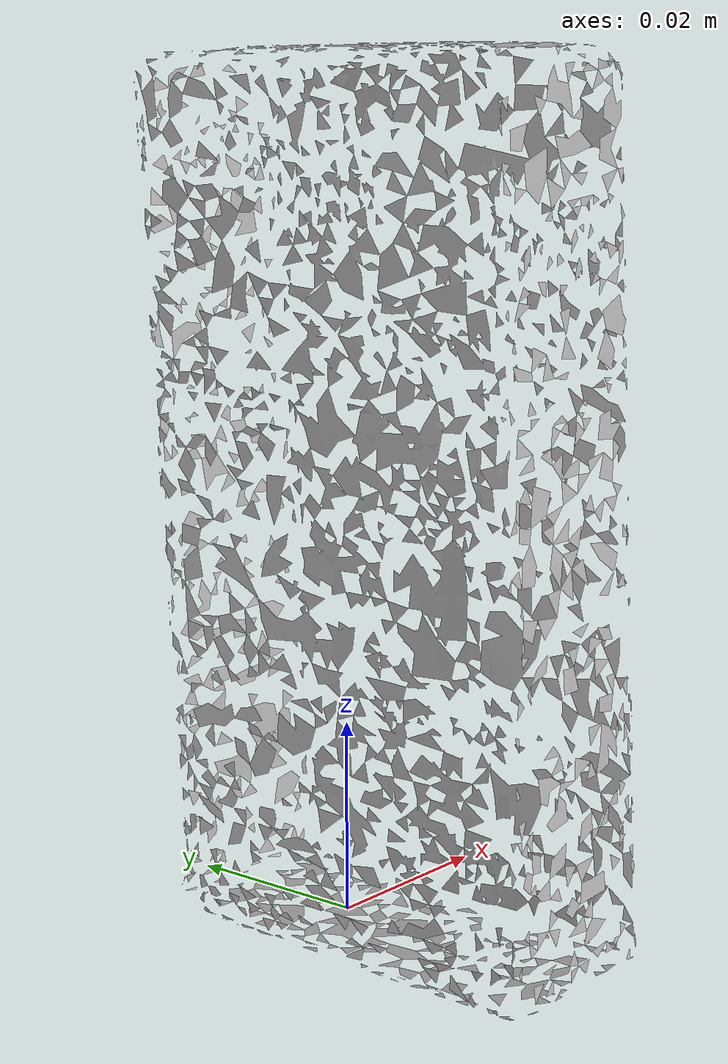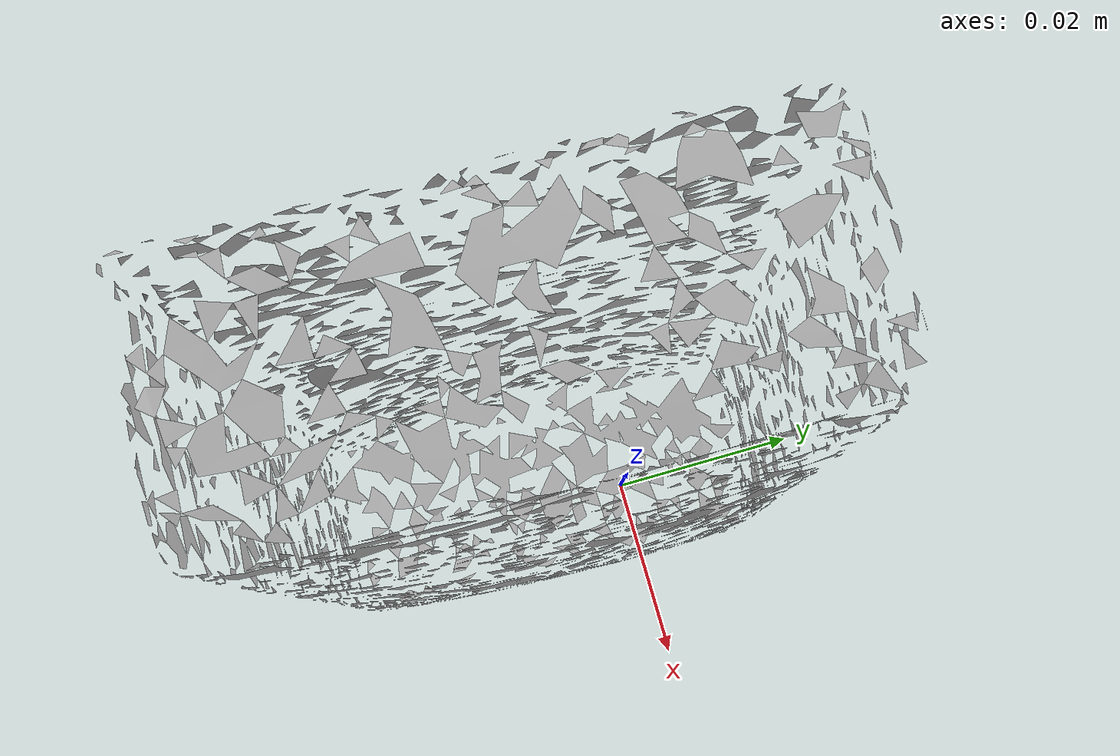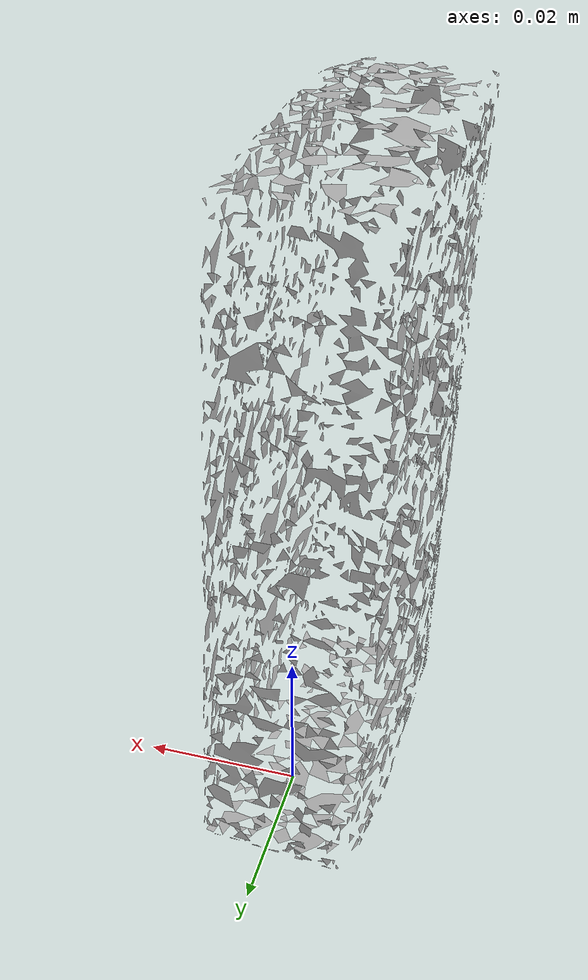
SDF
<?xml version='1.0'?>
<sdf version="1.6">
  <model name="sugar_box">
    <static>false</static>
    <link name="link">
      <inertial>
        <pose>-0.007698415494577894 -0.010078163162294522 0.04602381422432334 -3.126326294796978 0.040126571648077605 3.103110966594215</pose>
        <mass>0.000637932730363638</mass>
        <inertia>
          <ixx>1</ixx>
          <ixy>0</ixy>
          <ixz>0</ixz>
          <iyy>1</iyy>
          <iyz>0</iyz>
          <izz>1</izz>
        </inertia>
      </inertial>
      <collision name="collision">
        <geometry>
          <mesh>
            <!-- Use a downsampled mesh for collisions -->
            <uri>model://004_sugar_box/downsampled.obj</uri>
            <scale>0.5 0.5 0.5</scale>
	        </mesh>
        </geometry>
        <surface>
      </surface>
      </collision>
      <visual name="visual">
        <geometry>
          <mesh>
            <uri>model://004_sugar_box/google_16k/textured.obj</uri>
            <scale>0.5 0.5 0.5</scale>
	        </mesh>
        </geometry>
        <material>
          <script>
            <uri>model://004_sugar_box/sugar_box.material</uri>
            <name>sugar_box</name>
          </script>
        </material>
      </visual>
    </link>
  </model>
</sdf>
